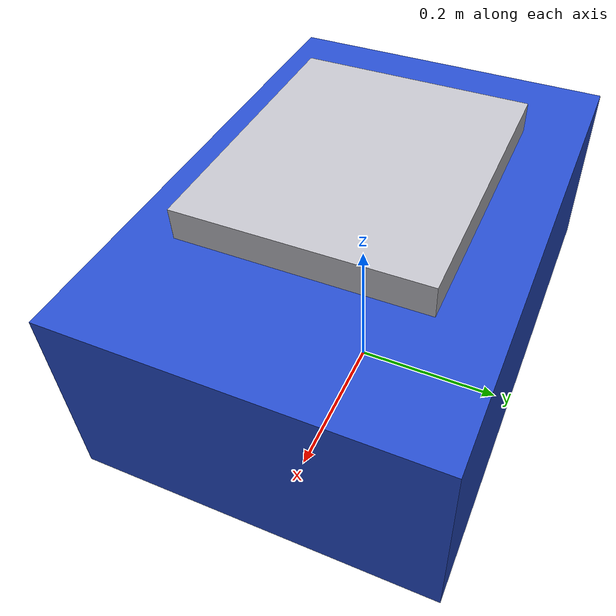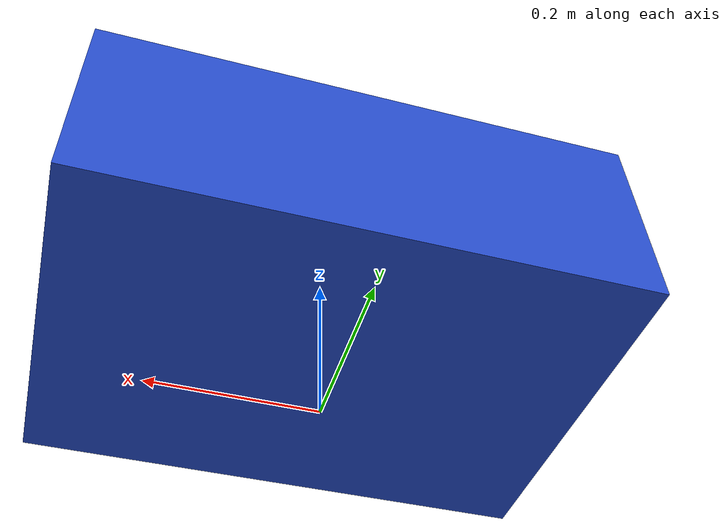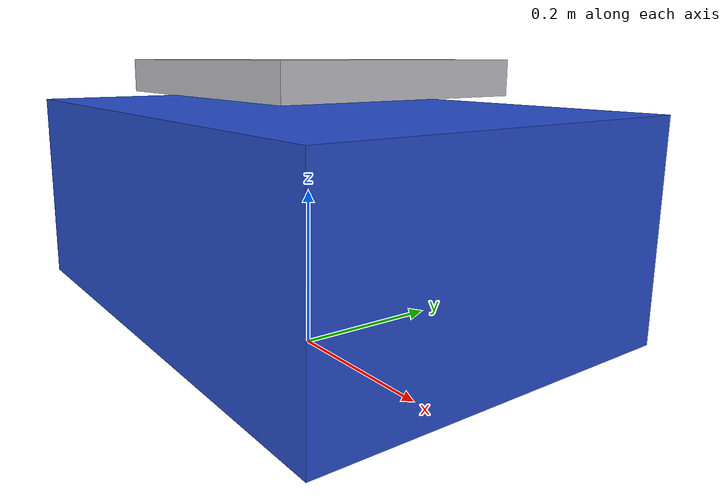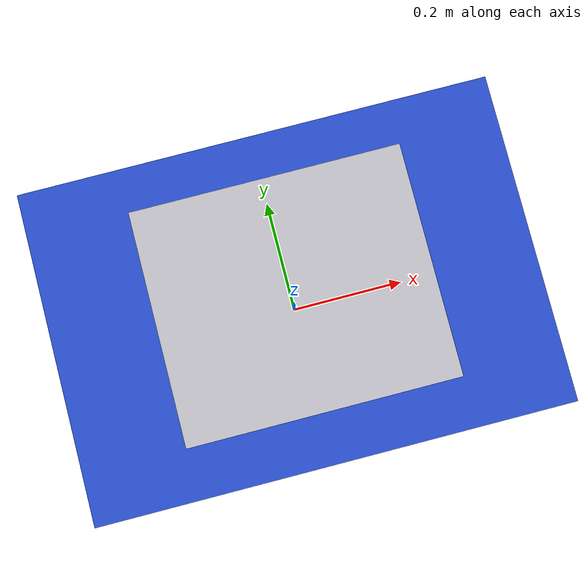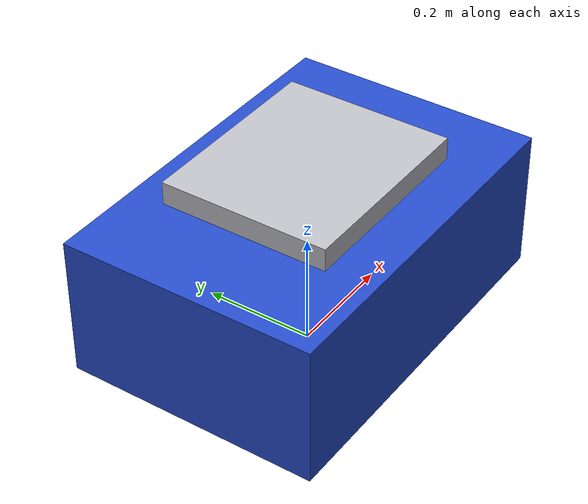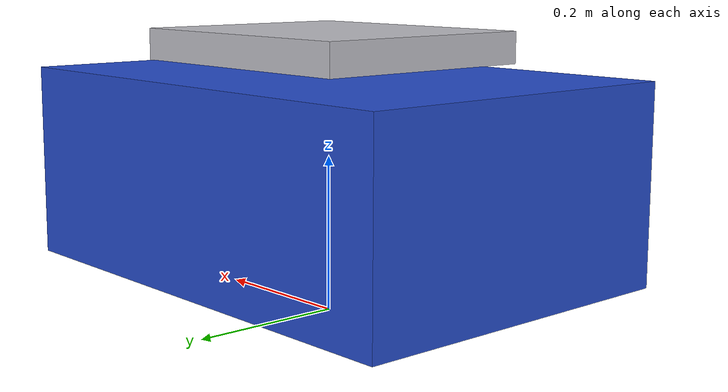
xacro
<robot xmlns:xacro="http://www.ros.org/wiki/xacro">

  <!-- ================= MAIN BODY ================= -->

  <link name="base_link">

    <visual>
      <origin xyz="0 0 0.18"/>
      <geometry>
        <box size="0.65 0.45 0.25"/>
      </geometry>
      <material name="body_blue"/>
    </visual>

    <collision>
      <origin xyz="0 0 0.18"/>
      <geometry>
        <box size="0.65 0.45 0.25"/>
      </geometry>
    </collision>

    <inertial>
      <origin xyz="0 0 0.18"/>
      <mass value="6"/>
      <inertia
        ixx="0.2"
        ixy="0"
        ixz="0"
        iyy="0.2"
        iyz="0"
        izz="0.2"/>
    </inertial>

  </link>

  <!-- ================= TOP SENSOR PLATFORM ================= -->

  <link name="top_plate">

    <visual>
      <origin xyz="0 0 0.34"/>
      <geometry>
        <box size="0.35 0.30 0.04"/>
      </geometry>
      <material name="silver"/>
    </visual>

    <collision>
      <origin xyz="0 0 0.34"/>
      <geometry>
        <box size="0.35 0.30 0.04"/>
      </geometry>
    </collision>

  </link>

  <joint name="top_plate_joint" type="fixed">

    <parent link="base_link"/>
    <child link="top_plate"/>

    <origin xyz="0 0 0"/>

  </joint>

</robot>
